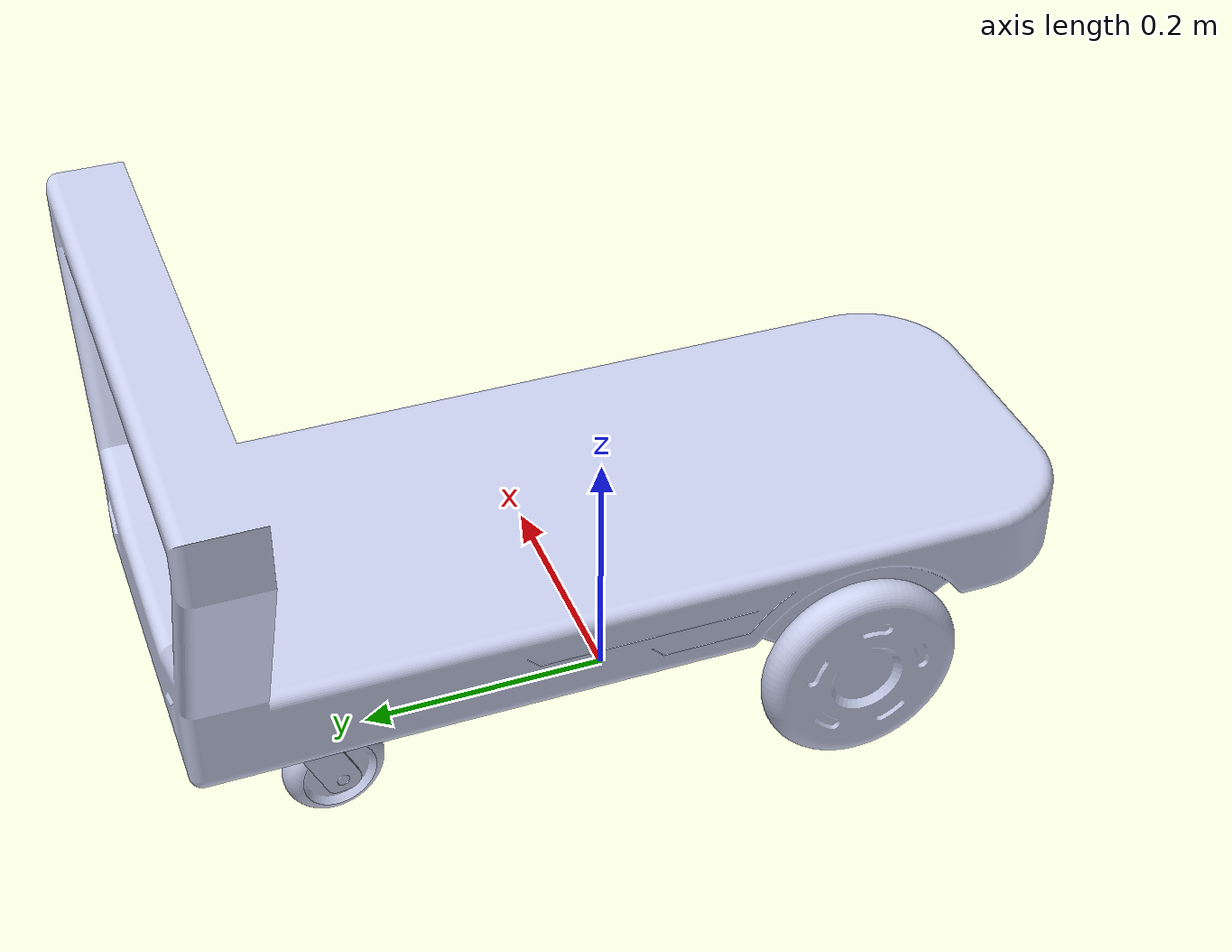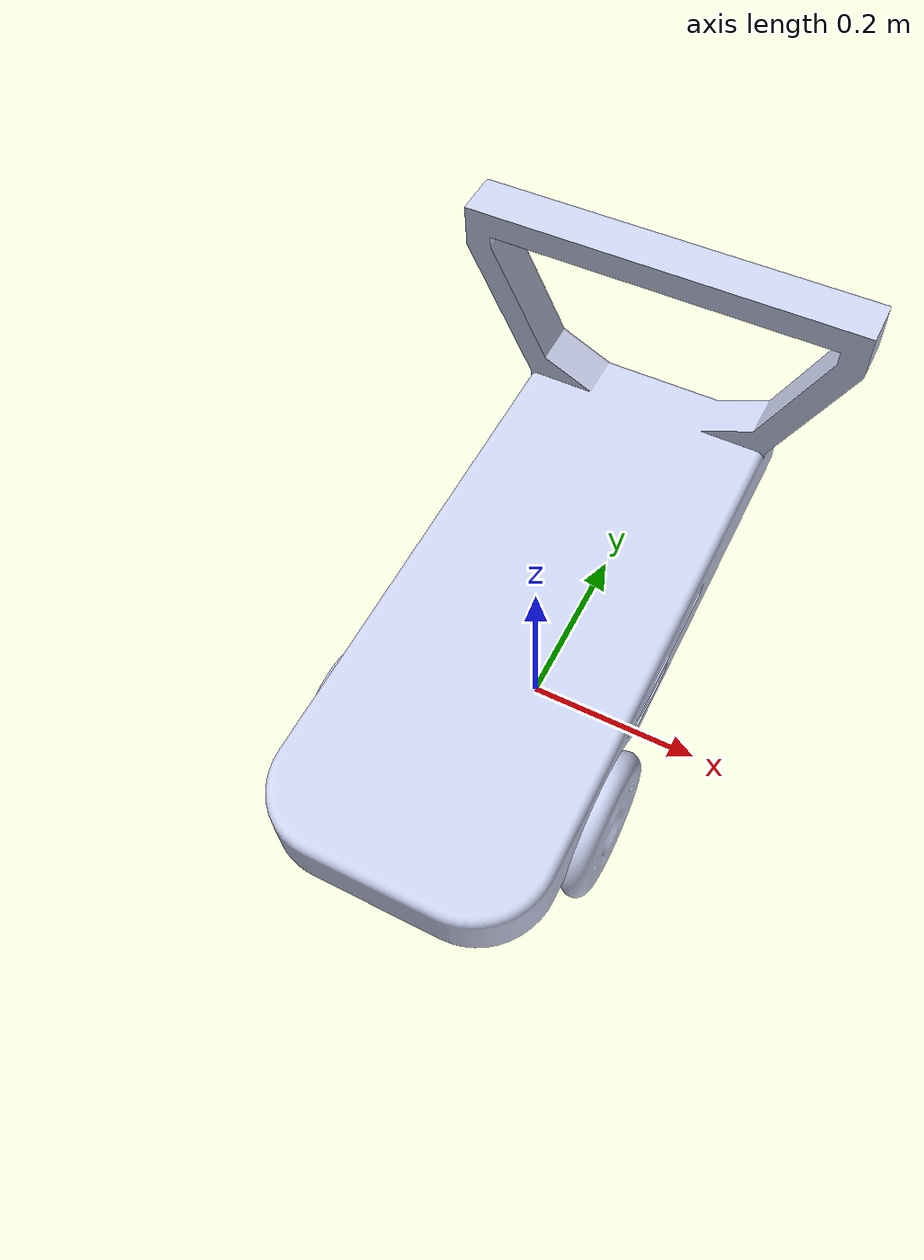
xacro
<?xml version="1.0" encoding="utf-8"?>

<robot name="robot_urdf" xmlns:xacro="http://www.ros.org/wiki/xacro">

  <xacro:include filename="$(find robot_urdf)/urdf/robot_urdf_gazebo.xacro"/>
  <!-- Dummy link to fix root inertia warning -->
  <link name="base_footprint"/>

  <joint name="base_joint" type="fixed">
    <parent link="base_footprint"/>
    <child link="base_link"/>
    <origin xyz="0 0 0" rpy="0 0 0"/>
  </joint>

  <!-- Base Link -->
  <link name="base_link">
    <inertial>
      <origin xyz="-0.0028474 0.044831 0.17201" rpy="0 0 0" />
      <mass value="16.066" />
      <inertia ixx="0.78008" ixy="-0.00012591" ixz="-4.1689E-05"
               iyy="0.20279" iyz="-0.081775" izz="0.8623" />
    </inertial>
    <visual>
      <origin xyz="0 0 0" rpy="0 0 0" />
      <geometry>
        <mesh filename="package://robot_urdf/meshes/base_link.STL" />
      </geometry>
      <material name="">
        <color rgba="0.79216 0.81961 0.93333 1" />
      </material>
    </visual>
    <collision>
      <origin xyz="0 0 0" rpy="0 0 0" />
      <geometry>
        <mesh filename="package://robot_urdf/meshes/base_link.STL" />
      </geometry>
    </collision>
  </link>

  <link
    name="caster_link_left">
    <inertial>
      <origin
        xyz="-0.00033745 -0.03325 0.0092752"
        rpy="0 0 0" />
      <mass
        value="0.026905" />
      <inertia
        ixx="1.7873E-05"
        ixy="-1.9068E-07"
        ixz="-7.6425E-08"
        iyy="1.3196E-05"
        iyz="5.2414E-06"
        izz="1.997E-05" />
    </inertial>
    <visual>
      <origin
        xyz="0 0 0"
        rpy="0 0 0" />
      <geometry>
        <mesh
          filename="package://robot_urdf/meshes/caster_link_left.STL" />
      </geometry>
      <material
        name="">
        <color
          rgba="0.79216 0.81961 0.93333 1" />
      </material>
    </visual>
    <collision>
      <origin
        xyz="0 0 0"
        rpy="0 0 0" />
      <geometry>
        <mesh
          filename="package://robot_urdf/meshes/caster_link_left.STL" />
      </geometry>
    </collision>
  </link>
  <joint
    name="caster_joint_left"
    type="fixed">
    <origin
      xyz="0.072155 0.26812 0.1075"
      rpy="1.5708 0 0" />
    <parent
      link="base_link" />
    <child
      link="caster_link_left" />
    <axis
      xyz="0 -1 0" />
  </joint>
  <link
    name="caster_wheel_link_left">
    <inertial>
      <origin
        xyz="-0.015989 0 -0.0005817"
        rpy="0 0 0" />
      <mass
        value="0.10698" />
      <inertia
        ixx="8.1432E-05"
        ixy="6.6857E-21"
        ixz="1.3043E-06"
        iyy="4.558E-05"
        iyz="-2.135E-21"
        izz="4.5627E-05" />
    </inertial>
    <visual>
      <origin
        xyz="0 0 0"
        rpy="0 0 0" />
      <geometry>
        <mesh
          filename="package://robot_urdf/meshes/caster_wheel_link_left.STL" />
      </geometry>
      <material
        name="">
        <color
          rgba="0.79216 0.81961 0.93333 1" />
      </material>
    </visual>
    <collision>
      <origin
        xyz="0 0 0"
        rpy="0 0 0" />
      <geometry>
        <mesh
          filename="package://robot_urdf/meshes/caster_wheel_link_left.STL" />
      </geometry>
    </collision>
  </link>
  <joint
    name="caster_wheel_joint_left"
    type="continuous">
    <origin
      xyz="0.015083 -0.0675 0.025488"
      rpy="0 0 0" />
    <parent
      link="caster_link_left" />
    <child
      link="caster_wheel_link_left" />
    <axis
      xyz="0.99934 0 0.036356" />
  </joint>
  <link
    name="caster_link_right">
    <inertial>
      <origin
        xyz="0.0010261 -0.03325 0.0092245"
        rpy="0 0 0" />
      <mass
        value="0.026905" />
      <inertia
        ixx="1.7895E-05"
        ixy="5.7987E-07"
        ixz="2.3113E-07"
        iyy="1.3196E-05"
        iyz="5.2127E-06"
        izz="1.9948E-05" />
    </inertial>
    <visual>
      <origin
        xyz="0 0 0"
        rpy="0 0 0" />
      <geometry>
        <mesh
          filename="package://robot_urdf/meshes/caster_link_right.STL" />
      </geometry>
      <material
        name="">
        <color
          rgba="0.79216 0.81961 0.93333 1" />
      </material>
    </visual>
    <collision>
      <origin
        xyz="0 0 0"
        rpy="0 0 0" />
      <geometry>
        <mesh
          filename="package://robot_urdf/meshes/caster_link_right.STL" />
      </geometry>
    </collision>
  </link>
  <joint
    name="caster_joint_right"
    type="fixed">
    <origin
      xyz="-0.077845 0.26812 0.1075"
      rpy="1.5708 0 0" />
    <parent
      link="base_link" />
    <child
      link="caster_link_right" />
    <axis
      xyz="0 -1 0" />
  </joint>
  <link
    name="caster_wheel_link_right">
    <inertial>
      <origin
        xyz="-0.015902 0 0.0017689"
        rpy="0 0 0" />
      <mass
        value="0.10698" />
      <inertia
        ixx="8.104E-05"
        ixy="-1.9527E-38"
        ixz="-3.9447E-06"
        iyy="4.558E-05"
        iyz="1.2422E-39"
        izz="4.6019E-05" />
    </inertial>
    <visual>
      <origin
        xyz="0 0 0"
        rpy="0 0 0" />
      <geometry>
        <mesh
          filename="package://robot_urdf/meshes/caster_wheel_link_right.STL" />
      </geometry>
      <material
        name="">
        <color
          rgba="0.79216 0.81961 0.93333 1" />
      </material>
    </visual>
    <collision>
      <origin
        xyz="0 0 0"
        rpy="0 0 0" />
      <geometry>
        <mesh
          filename="package://robot_urdf/meshes/caster_wheel_link_right.STL" />
      </geometry>
    </collision>
  </link>
  <joint
    name="caster_wheel_joint_right"
    type="continuous">
    <origin
      xyz="0.018657 -0.0675 0.023001"
      rpy="0 0 0" />
    <parent
      link="caster_link_right" />
    <child
      link="caster_wheel_link_right" />
    <axis
      xyz="0.99387 0 -0.11056" />
  </joint>
  <link
    name="drive_wheel_link_left">
    <inertial>
      <origin
        xyz="0.046034 0 0"
        rpy="0 0 0" />
      <mass
        value="0.55652" />
      <inertia
        ixx="0.0016491"
        ixy="-4.7815E-20"
        ixz="-9.7954E-21"
        iyy="0.00087192"
        iyz="3.3966E-20"
        izz="0.00087192" />
    </inertial>
    <visual>
      <origin
        xyz="0 0 0"
        rpy="0 0 0" />
      <geometry>
        <mesh
          filename="package://robot_urdf/meshes/drive_wheel_link_left.STL" />
      </geometry>
      <material
        name="">
        <color
          rgba="0.79216 0.81961 0.93333 1" />
      </material>
    </visual>
    <collision>
      <origin
        xyz="0 0 0"
        rpy="0 0 0" />
      <geometry>
        <mesh
          filename="package://robot_urdf/meshes/drive_wheel_link_left.STL" />
      </geometry>
    </collision>
  </link>
  <joint
    name="drive_wheel_joint_left"
    type="continuous">
    <origin
      xyz="0.10215 -0.15188 0.08"
      rpy="1.5708 0 0" />
    <parent
      link="base_link" />
    <child
      link="drive_wheel_link_left" />
    <axis
      xyz="-1 0 0" />
  </joint>
  <link
    name="drive_wheel_link_right">
    <inertial>
      <origin
        xyz="-0.046034 0 0"
        rpy="0 0 0" />
      <mass
        value="0.55652" />
      <inertia
        ixx="0.0016491"
        ixy="-4.0348E-20"
        ixz="4.2297E-21"
        iyy="0.00087192"
        iyz="5.4077E-20"
        izz="0.00087192" />
    </inertial>
    <visual>
      <origin
        xyz="0 0 0"
        rpy="0 0 0" />
      <geometry>
        <mesh
          filename="package://robot_urdf/meshes/drive_wheel_link_right.STL" />
      </geometry>
      <material
        name="">
        <color
          rgba="0.79216 0.81961 0.93333 1" />
      </material>
    </visual>
    <collision>
      <origin
        xyz="0 0 0"
        rpy="0 0 0" />
      <geometry>
        <mesh
          filename="package://robot_urdf/meshes/drive_wheel_link_right.STL" />
      </geometry>
    </collision>
  </link>
  <joint
    name="drive_wheel_joint_right"
    type="continuous">
    <origin
      xyz="-0.10785 -0.15188 0.08"
      rpy="1.5708 0 0" />
    <parent
      link="base_link" />
    <child
      link="drive_wheel_link_right" />
    <axis
      xyz="1 0 0" />
  </joint>

</robot>
